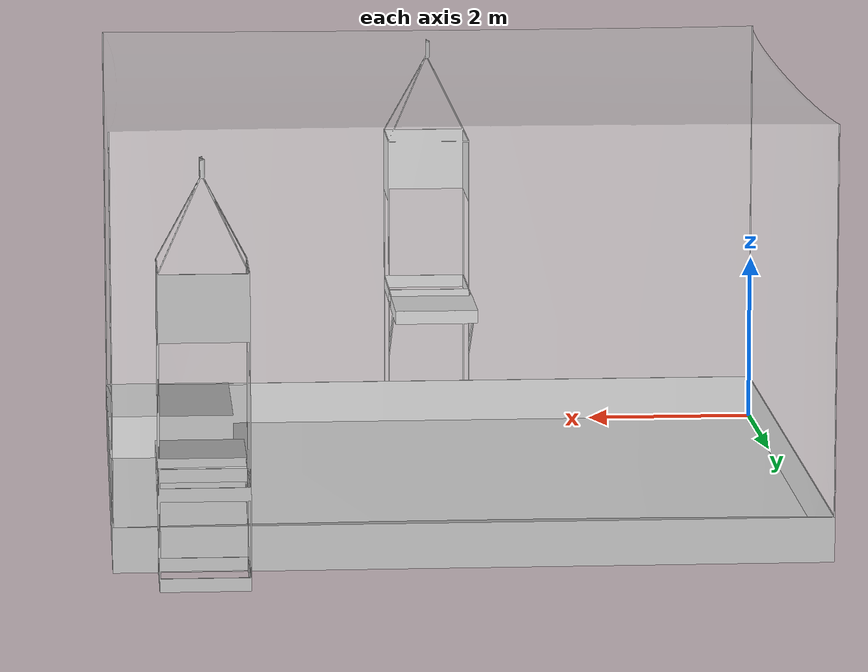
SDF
<?xml version='1.0'?>
<sdf version='1.6'>
  <model name='arena_spawn'>
    <link name='link_0'>
      <inertial>
        <mass>1</mass>
        <inertia>
          <ixx>0.166667</ixx>
          <ixy>0</ixy>
          <ixz>0</ixz>
          <iyy>0.166667</iyy>
          <iyz>0</iyz>
          <izz>0.166667</izz>
        </inertia>
      </inertial>
      <self_collide>0</self_collide>
      <enable_wind>0</enable_wind>
      <kinematic>0</kinematic>
      <pose frame=''>0 0 0 0 -0 0</pose>
      <visual name='visual'>
        <pose frame=''>0 0 0 0 -0 0</pose>
        <geometry>
          <mesh>
            <uri>model://arena_spawn/meshes/net.obj</uri>
            <scale>1 1 1</scale>
          </mesh>
        </geometry>
        <material>
          <lighting>1</lighting>
          <script>
            <uri>file://media/materials/scripts/gazebo.material</uri>
            <name>Gazebo/white</name>
          </script>
          <shader type='pixel'>
            <normal_map>__default__</normal_map>
          </shader>
          <ambient>0.3 0.3 0.3 1</ambient>
          <diffuse>0.7 0.7 0.7 1</diffuse>
          <specular>0.01 0.01 0.01 1</specular>
          <emissive>0 0 0 1</emissive>
        </material>
        <transparency>0.5</transparency>
        <cast_shadows>1</cast_shadows>
      </visual>
      <collision name='collision'>
        <laser_retro>0</laser_retro>
        <max_contacts>10</max_contacts>
        <pose frame=''>0 0 0 0 -0 0</pose>
        <geometry>
          <mesh>
            <uri>model://arena_spawn/meshes/net.obj</uri>
            <scale>1 1 1</scale>
          </mesh>
        </geometry>
        <surface>
          <friction>
            <ode>
              <mu>1</mu>
              <mu2>1</mu2>
              <fdir1>0 0 0</fdir1>
              <slip1>0</slip1>
              <slip2>0</slip2>
            </ode>
            <torsional>
              <coefficient>1</coefficient>
              <patch_radius>100</patch_radius>
              <surface_radius>100</surface_radius>
              <use_patch_radius>1</use_patch_radius>
              <ode>
                <slip>0</slip>
              </ode>
            </torsional>
          </friction>
          <bounce>
            <restitution_coefficient>0</restitution_coefficient>
            <threshold>1e+06</threshold>
          </bounce>
          <contact>
            <collide_without_contact>0</collide_without_contact>
            <collide_without_contact_bitmask>1</collide_without_contact_bitmask>
            <collide_bitmask>1</collide_bitmask>
            <ode>
              <soft_cfm>0</soft_cfm>
              <soft_erp>0.2</soft_erp>
              <kp>1e+13</kp>
              <kd>1</kd>
              <max_vel>0.01</max_vel>
              <min_depth>0</min_depth>
            </ode>
            <bullet>
              <split_impulse>1</split_impulse>
              <split_impulse_penetration_threshold>-0.01</split_impulse_penetration_threshold>
              <soft_cfm>0</soft_cfm>
              <soft_erp>0.2</soft_erp>
              <kp>1e+13</kp>
              <kd>1</kd>
            </bullet>
          </contact>
        </surface>
      </collision>
    </link>
    <model name='arena_spawn'>
      <link name='link_0'>
        <inertial>
          <mass>15</mass>
          <inertia>
            <ixx>1</ixx>
            <ixy>1</ixy>
            <ixz>1</ixz>
            <iyy>1</iyy>
            <iyz>1</iyz>
            <izz>1</izz>
          </inertia>
        </inertial>
        <self_collide>1</self_collide>
        <enable_wind>0</enable_wind>
        <kinematic>0</kinematic>
        <pose frame=''>0 0 0 0 -0 0</pose>
        <visual name='visual'>
          <pose frame=''>0 0 0 0 -0 0</pose>
          <geometry>
            <mesh>
              <uri>model://arena_spawn/meshes/Arena.obj</uri>
              <scale>1 1 1</scale>
            </mesh>
          </geometry>
          <transparency>0</transparency>
          <cast_shadows>1</cast_shadows>
        </visual>
        <collision name='collision'>
          <laser_retro>0</laser_retro>
          <max_contacts>10</max_contacts>
          <pose frame=''>0 0 0 0 -0 0</pose>
          <geometry>
            <mesh>
              <uri>model://arena_spawn/meshes/Arena.obj</uri>
              <scale>1 1 1</scale>
            </mesh>
          </geometry>
          <surface>
            <friction>
              <ode>
                <mu>1</mu>
                <mu2>1</mu2>
                <fdir1>0 0 0</fdir1>
                <slip1>0</slip1>
                <slip2>0</slip2>
              </ode>
              <torsional>
                <coefficient>1</coefficient>
                <patch_radius>100</patch_radius>
                <surface_radius>100</surface_radius>
                <use_patch_radius>1</use_patch_radius>
                <ode>
                  <slip>0</slip>
                </ode>
              </torsional>
            </friction>
            <bounce>
              <restitution_coefficient>0</restitution_coefficient>
              <threshold>1e+06</threshold>
            </bounce>
            <contact>
              <collide_without_contact>0</collide_without_contact>
              <collide_without_contact_bitmask>1</collide_without_contact_bitmask>
              <collide_bitmask>1</collide_bitmask>
              <ode>
                <soft_cfm>0</soft_cfm>
                <soft_erp>0.2</soft_erp>
                <kp>1e+13</kp>
                <kd>1</kd>
                <max_vel>0.01</max_vel>
                <min_depth>0</min_depth>
              </ode>
              <bullet>
                <split_impulse>1</split_impulse>
                <split_impulse_penetration_threshold>-0.01</split_impulse_penetration_threshold>
                <soft_cfm>0</soft_cfm>
                <soft_erp>0.2</soft_erp>
                <kp>1e+13</kp>
                <kd>1</kd>
              </bullet>
            </contact>
          </surface>
        </collision>
      </link>
      <link name='link_4'>
        <inertial>
          <mass>1</mass>
          <inertia>
            <ixx>0.166667</ixx>
            <ixy>0</ixy>
            <ixz>0</ixz>
            <iyy>0.166667</iyy>
            <iyz>0</iyz>
            <izz>0.166667</izz>
          </inertia>
        </inertial>
        <self_collide>1</self_collide>
        <enable_wind>0</enable_wind>
        <kinematic>0</kinematic>
        <pose frame=''>0 0 0 0 -0 0</pose>
        <visual name='visual'>
          <pose frame=''>0 0 0 0 -0 0</pose>
          <geometry>
            <mesh>
              <uri>model://arena_spawn/meshes/high_base_left.obj</uri>
              <scale>1 1 1</scale>
            </mesh>
          </geometry>
          <transparency>0</transparency>
          <cast_shadows>1</cast_shadows>
        </visual>
        <collision name='collision'>
          <laser_retro>0</laser_retro>
          <max_contacts>10</max_contacts>
          <pose frame=''>0 0 0 0 -0 0</pose>
          <geometry>
            <mesh>
              <uri>model://arena_spawn/meshes/high_base_left.obj</uri>
              <scale>1 1 1</scale>
            </mesh>
          </geometry>
          <surface>
            <friction>
              <ode>
                <mu>1</mu>
                <mu2>1</mu2>
                <fdir1>0 0 0</fdir1>
                <slip1>0</slip1>
                <slip2>0</slip2>
              </ode>
              <torsional>
                <coefficient>1</coefficient>
                <patch_radius>100</patch_radius>
                <surface_radius>100</surface_radius>
                <use_patch_radius>1</use_patch_radius>
                <ode>
                  <slip>0</slip>
                </ode>
              </torsional>
            </friction>
            <bounce>
              <restitution_coefficient>0</restitution_coefficient>
              <threshold>1e+06</threshold>
            </bounce>
            <contact>
              <collide_without_contact>0</collide_without_contact>
              <collide_without_contact_bitmask>1</collide_without_contact_bitmask>
              <collide_bitmask>1</collide_bitmask>
              <ode>
                <soft_cfm>0</soft_cfm>
                <soft_erp>0.2</soft_erp>
                <kp>1e+13</kp>
                <kd>1</kd>
                <max_vel>0.01</max_vel>
                <min_depth>0</min_depth>
              </ode>
              <bullet>
                <split_impulse>1</split_impulse>
                <split_impulse_penetration_threshold>-0.01</split_impulse_penetration_threshold>
                <soft_cfm>0</soft_cfm>
                <soft_erp>0.2</soft_erp>
                <kp>1e+13</kp>
                <kd>1</kd>
              </bullet>
            </contact>
          </surface>
        </collision>
      </link>
      <link name='link_5'>
        <inertial>
          <mass>1</mass>
          <inertia>
            <ixx>0.166667</ixx>
            <ixy>0</ixy>
            <ixz>0</ixz>
            <iyy>0.166667</iyy>
            <iyz>0</iyz>
            <izz>0.166667</izz>
          </inertia>
        </inertial>
        <self_collide>1</self_collide>
        <enable_wind>0</enable_wind>
        <kinematic>0</kinematic>
        <pose frame=''>0 0 0 0 -0 0</pose>
        <visual name='visual'>
          <pose frame=''>0 0 0 0 -0 0</pose>
          <geometry>
            <mesh>
              <uri>model://arena_spawn/meshes/high_base_right.obj</uri>
              <scale>1 1 1</scale>
            </mesh>
          </geometry>
          <transparency>0</transparency>
          <cast_shadows>1</cast_shadows>
        </visual>
        <collision name='collision'>
          <laser_retro>0</laser_retro>
          <max_contacts>10</max_contacts>
          <pose frame=''>0 0 0 0 -0 0</pose>
          <geometry>
            <mesh>
              <uri>model://arena_spawn/meshes/high_base_right.obj</uri>
              <scale>1 1 1</scale>
            </mesh>
          </geometry>
          <surface>
            <friction>
              <ode>
                <mu>1</mu>
                <mu2>1</mu2>
                <fdir1>0 0 0</fdir1>
                <slip1>0</slip1>
                <slip2>0</slip2>
              </ode>
              <torsional>
                <coefficient>1</coefficient>
                <patch_radius>100</patch_radius>
                <surface_radius>100</surface_radius>
                <use_patch_radius>1</use_patch_radius>
                <ode>
                  <slip>0</slip>
                </ode>
              </torsional>
            </friction>
            <bounce>
              <restitution_coefficient>0</restitution_coefficient>
              <threshold>1e+06</threshold>
            </bounce>
            <contact>
              <collide_without_contact>0</collide_without_contact>
              <collide_without_contact_bitmask>1</collide_without_contact_bitmask>
              <collide_bitmask>1</collide_bitmask>
              <ode>
                <soft_cfm>0</soft_cfm>
                <soft_erp>0.2</soft_erp>
                <kp>1e+13</kp>
                <kd>1</kd>
                <max_vel>0.01</max_vel>
                <min_depth>0</min_depth>
              </ode>
              <bullet>
                <split_impulse>1</split_impulse>
                <split_impulse_penetration_threshold>-0.01</split_impulse_penetration_threshold>
                <soft_cfm>0</soft_cfm>
                <soft_erp>0.2</soft_erp>
                <kp>1e+13</kp>
                <kd>1</kd>
              </bullet>
            </contact>
          </surface>
        </collision>
      </link>
      <static>1</static>
      <pose frame=''>0 0 0.0005 0 -0 0</pose>
    </model>
    <static>1</static>
  </model>
</sdf>
